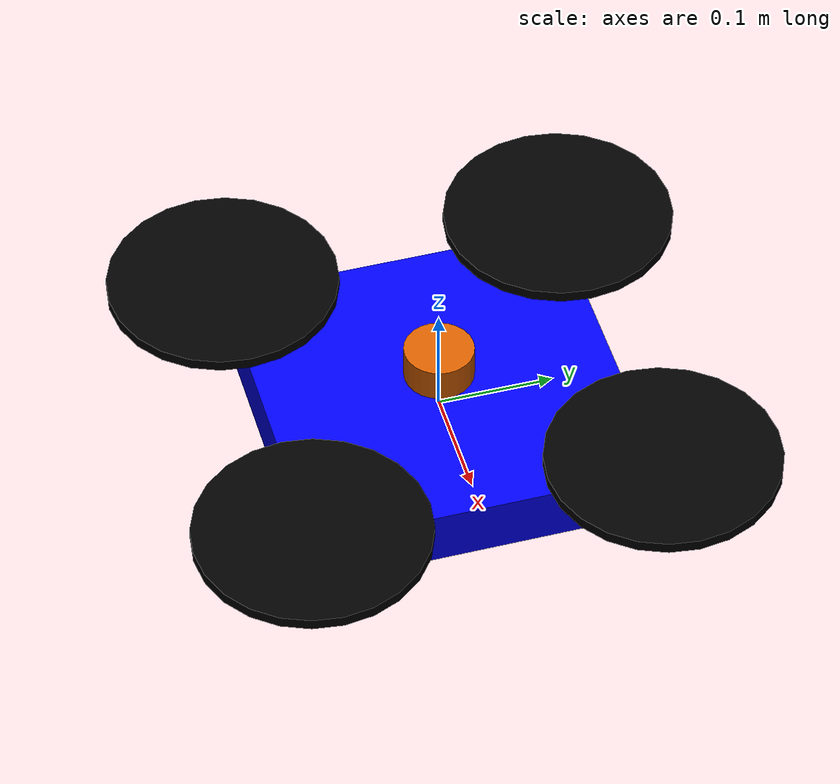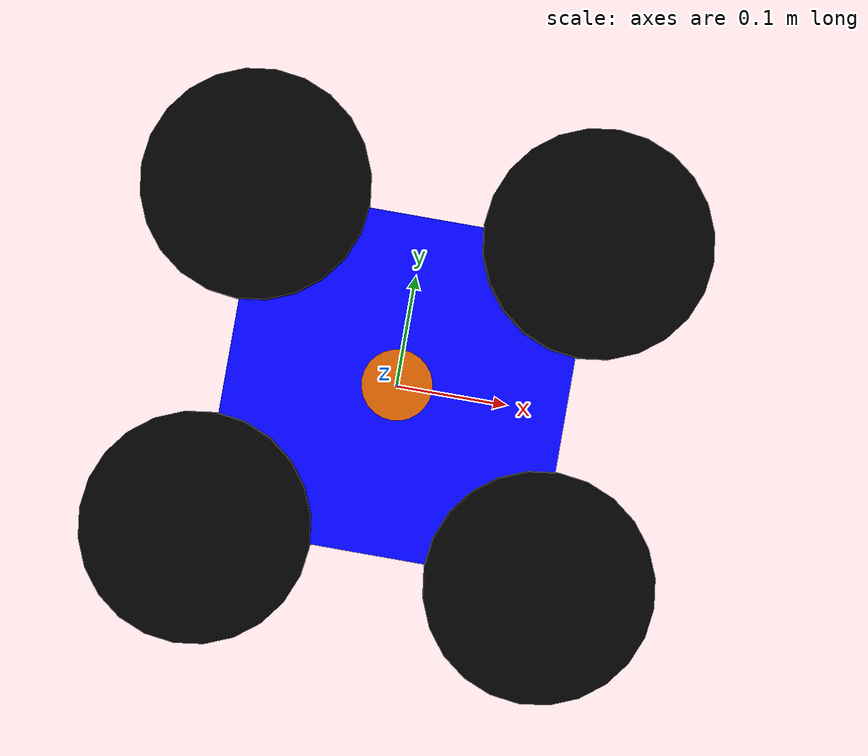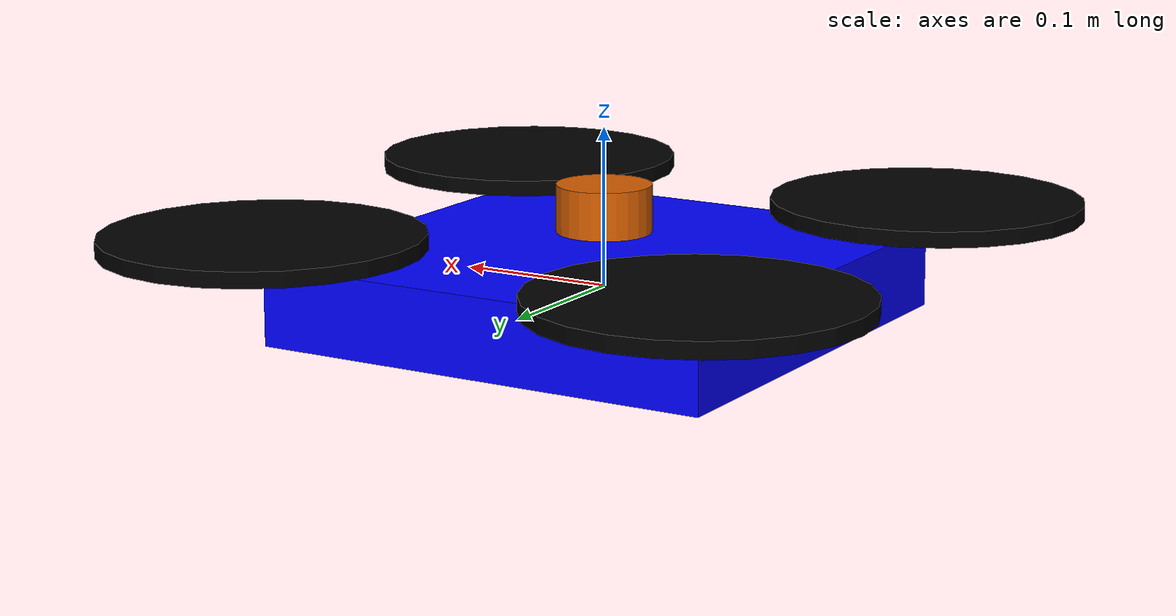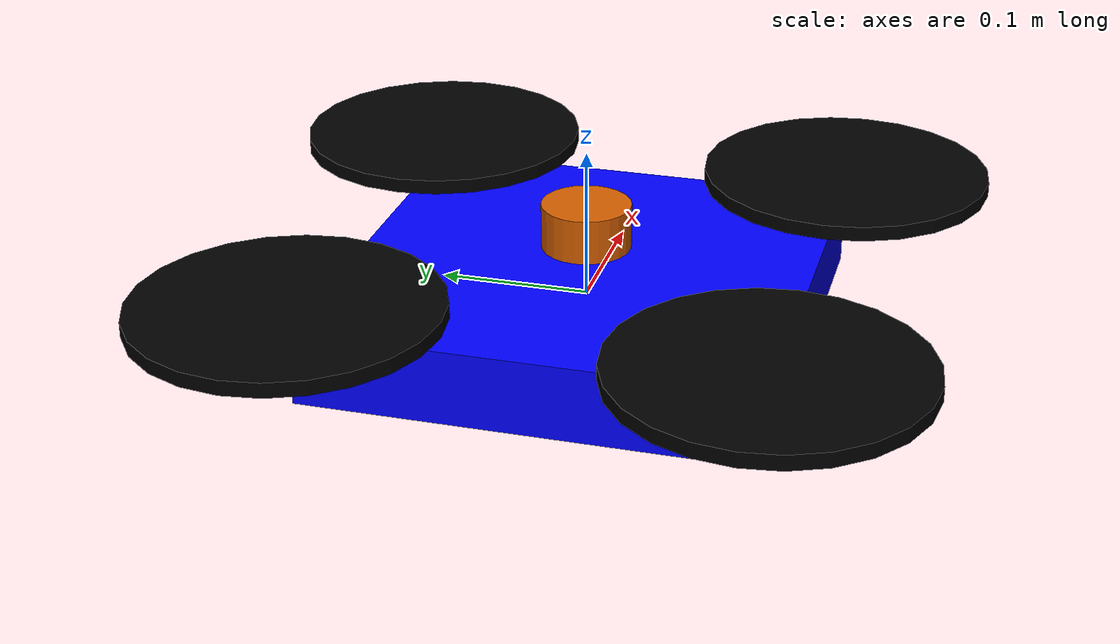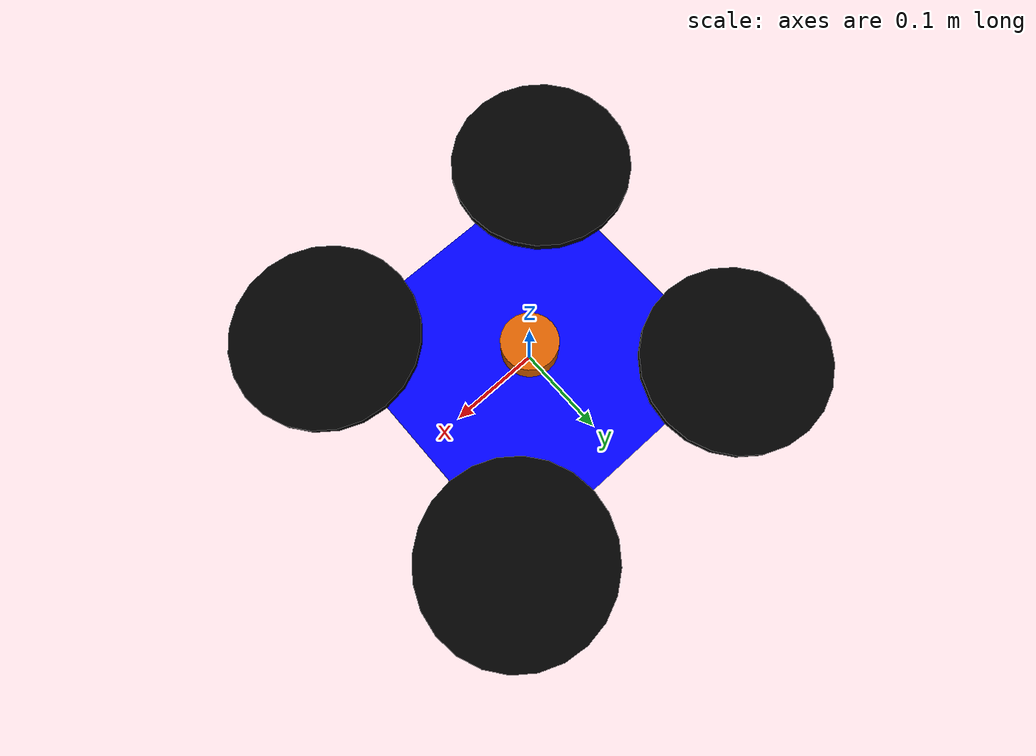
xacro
<?xml version="1.0"?>
<robot name="quadrotor" xmlns:xacro="http://www.ros.org/wiki/xacro">

  <xacro:include filename="$(find quadrotor_sim)/model/robot.gazebo" />

  <!-- ROOT LINK (No base_footprint to avoid physics confusion) -->
  <link name="base_link">
    <visual>
      <geometry><box size="0.3 0.3 0.05"/></geometry> <!-- Thinner body -->
      <material name="blue"><color rgba="0 0 1 1"/></material>
    </visual>
    <collision>
      <geometry><box size="0.3 0.3 0.05"/></geometry>
    </collision>
    <inertial>
      <mass value="1.0"/> <!-- REDUCED MASS to 1.0kg -->
      <inertia ixx="0.015" ixy="0" ixz="0" iyy="0.015" iyz="0" izz="0.03"/>
    </inertial>
  </link>

  <!-- ROTOR MACRO -->
  <xacro:macro name="rotor" params="name x y dir">
    <link name="${name}_link">
      <visual>
        <geometry><cylinder radius="0.1" length="0.01"/></geometry>
        <material name="black"><color rgba="0 0 0 1"/></material>
      </visual>
      <collision>
        <geometry><cylinder radius="0.1" length="0.01"/></geometry>
      </collision>
      <inertial>
        <mass value="0.02"/> <!-- Very light rotors -->
        <inertia ixx="0.0001" ixy="0" ixz="0" iyy="0.0001" iyz="0" izz="0.0001"/>
      </inertial>
    </link>

    <joint name="${name}_joint" type="continuous">
      <parent link="base_link"/>
      <child link="${name}_link"/>
      <origin xyz="${x} ${y} 0.04" rpy="0 0 0"/>
      <axis xyz="0 0 1"/> <!-- Axis MUST be positive Z -->
    </joint>
  </xacro:macro>

  <!-- Create 4 Rotors -->
  <xacro:rotor name="rotor_0" x="0.15" y="-0.15" dir="-1"/>
  <xacro:rotor name="rotor_1" x="-0.15" y="0.15" dir="-1"/>
  <xacro:rotor name="rotor_2" x="0.15" y="0.15" dir="1"/>
  <xacro:rotor name="rotor_3" x="-0.15" y="-0.15" dir="1"/>

  <!-- Lidar -->
  <link name="lidar_link">
    <visual>
      <geometry><cylinder radius="0.03" length="0.03"/></geometry>
    </visual>
  </link>
  <joint name="lidar_joint" type="fixed">
    <parent link="base_link"/>
    <child link="lidar_link"/>
    <origin xyz="0 0 0.05" rpy="0 0 0"/>
  </joint>

</robot>
